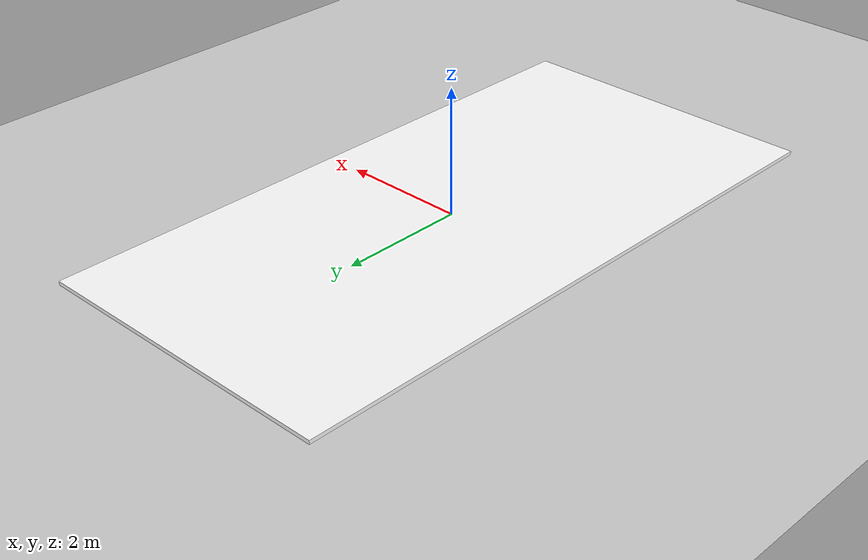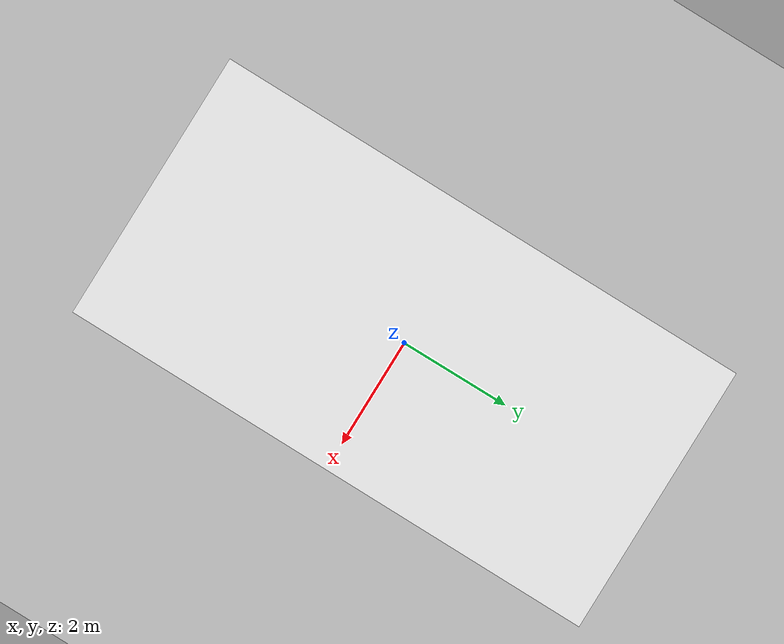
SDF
<?xml version="1.0" ?>
<sdf version="1.4">
  <world name="default">
    <include>
      <uri>model://ground_plane</uri>
    </include>
    <include>
      <uri>model://sun</uri>
    </include>
    <include>
      <uri>/home/apon/model_editor_models/lf_track_4</uri>
      <pose>-0 0 0 0 0 3.14</pose>
    </include>
  </world>
</sdf>

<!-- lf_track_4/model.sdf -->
<sdf version='1.6'>
  <model name='lf_track_4'>
    <link name='link_0'>
      <pose frame=''>0 0 0 0 -0 0</pose>
      <inertial>
        <mass>100</mass>
        <inertia>
          <ixx>0.166667</ixx>
          <ixy>0</ixy>
          <ixz>0</ixz>
          <iyy>0.166667</iyy>
          <iyz>0</iyz>
          <izz>0.166667</izz>
        </inertia>
        <pose frame=''>0 0 0 0 -0 0</pose>
      </inertial>
      <gravity>1</gravity>
      <self_collide>0</self_collide>
      <kinematic>1</kinematic>
      <visual name='visual'>
        <pose frame=''>0 0 0 0 -0 0</pose>
        <geometry>
          <box>
            <size>5 10 0.1</size>
          </box>
        </geometry>
        <material>
          <lighting>1</lighting>
          <script>
            <uri>file://media/materials/scripts/gazebo.material</uri>
            <name>Gazebo/lf_track</name>
          </script>
          <ambient>1 1 1 1</ambient>
          <diffuse>1 1 1 1</diffuse>
          <specular>1 1 1 1</specular>
          <emissive>1 1 1 1</emissive>
          <shader type='vertex'>
            <normal_map>__default__</normal_map>
          </shader>
        </material>
        <cast_shadows>1</cast_shadows>
        <transparency>0</transparency>
      </visual>
      <collision name='collision'>
        <laser_retro>0</laser_retro>
        <max_contacts>10</max_contacts>
        <pose frame=''>0 0 0 0 -0 0</pose>
        <geometry>
          <box>
            <size>5 10 0.1</size>
          </box>
        </geometry>
        <surface>
          <friction>
            <ode>
              <mu>1</mu>
              <mu2>1</mu2>
              <fdir1>0 0 0</fdir1>
              <slip1>0</slip1>
              <slip2>0</slip2>
            </ode>
            <torsional>
              <coefficient>1</coefficient>
              <patch_radius>0</patch_radius>
              <surface_radius>0</surface_radius>
              <use_patch_radius>1</use_patch_radius>
              <ode>
                <slip>0</slip>
              </ode>
            </torsional>
          </friction>
          <bounce>
            <restitution_coefficient>0</restitution_coefficient>
            <threshold>1e+06</threshold>
          </bounce>
          <contact>
            <collide_without_contact>0</collide_without_contact>
            <collide_without_contact_bitmask>1</collide_without_contact_bitmask>
            <collide_bitmask>1</collide_bitmask>
            <ode>
              <soft_cfm>0</soft_cfm>
              <soft_erp>0.2</soft_erp>
              <kp>1e+13</kp>
              <kd>1</kd>
              <max_vel>0.01</max_vel>
              <min_depth>0</min_depth>
            </ode>
            <bullet>
              <split_impulse>1</split_impulse>
              <split_impulse_penetration_threshold>-0.01</split_impulse_penetration_threshold>
              <soft_cfm>0</soft_cfm>
              <soft_erp>0.2</soft_erp>
              <kp>1e+13</kp>
              <kd>1</kd>
            </bullet>
          </contact>
        </surface>
      </collision>
    </link>
    <static>0</static>
    <allow_auto_disable>1</allow_auto_disable>
  </model>
</sdf>
